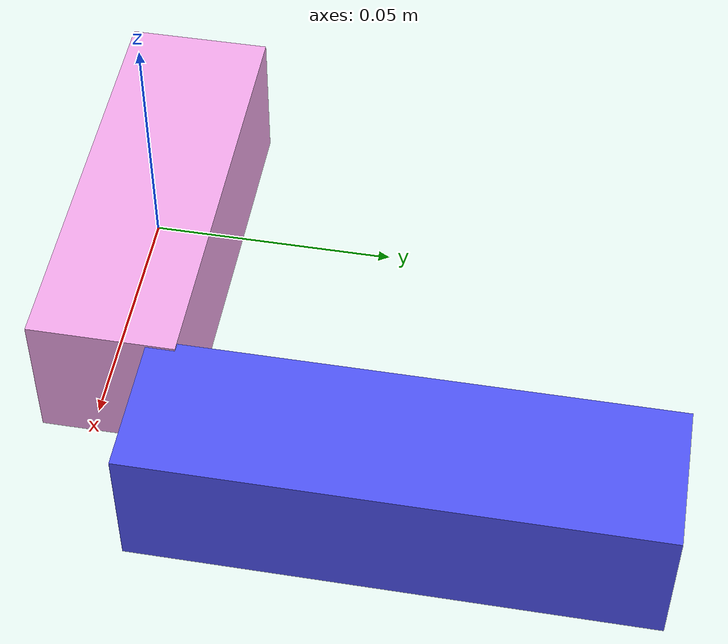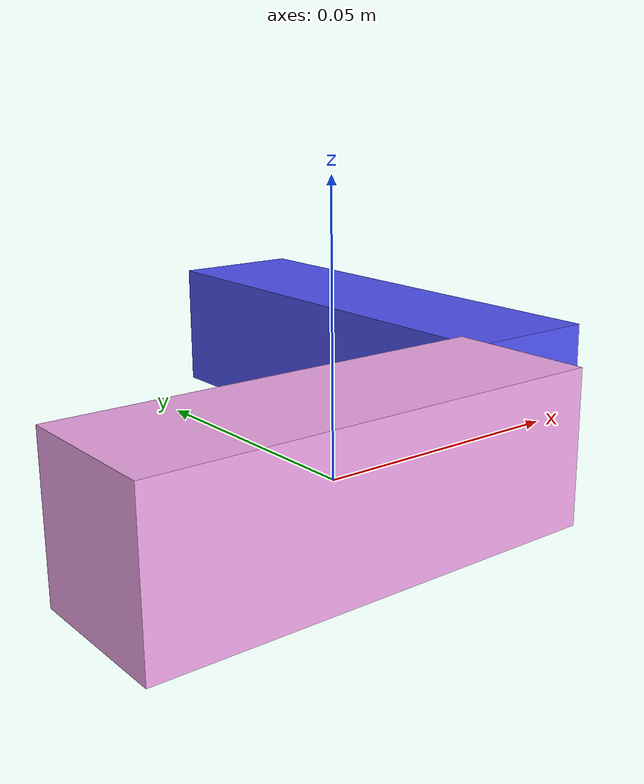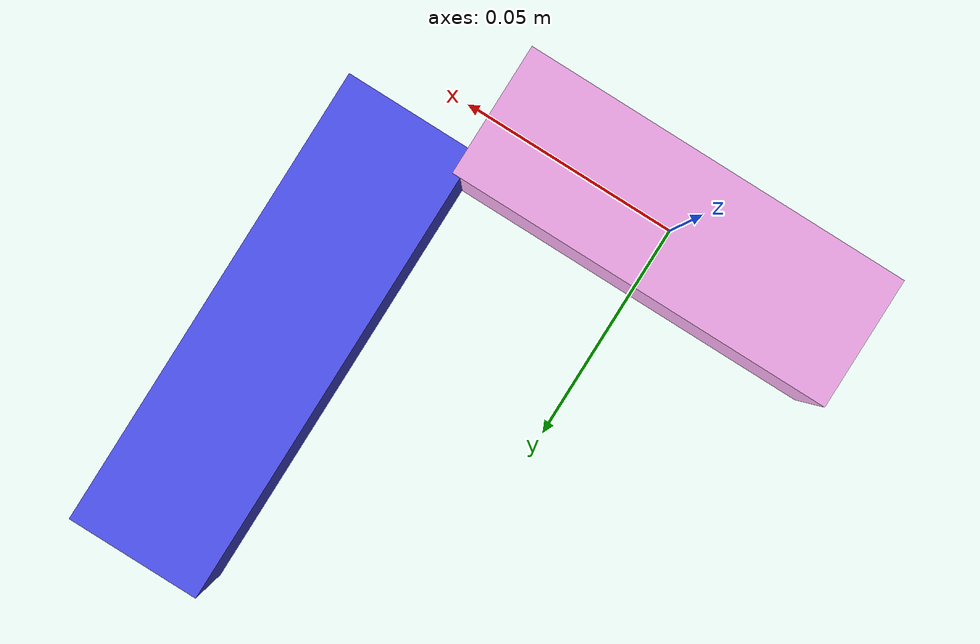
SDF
<sdf version="1.4"><world name="default"><model name="object0"><link name="link1"><pose>0 0 0 0 0 0</pose><inertial><pose>0 0 0 0 0 0</pose><mass>0.047590912091381</mass><inertia><ixx>7.138636813707149e-06</ixx><ixy>0</ixy><iyy>3.437304918349269e-05</iyy><ixz>0</ixz><iyz>0</iyz><izz>3.437304918349269e-05</izz></inertia></inertial><visual name="link1_visual"><pose>0 0  0 0 0 0</pose><geometry><box><size>0.08813131868774261 0.03 0.03</size></box></geometry><material><diffuse>0.9519430188396516 0.6636280308964009 0.9221278264684145 1</diffuse></material></visual><collision><pose>0 0  0 0 0 0</pose><geometry><box><size>0.08813131868774261 0.03 0.03</size></box></geometry></collision></link><link name="link2"><pose>0.057239893542120814 0.06181945398114549 0 0 0 0</pose><inertial><pose>0 0 0 0 0 0</pose><mass>0.05698731381158743</mass><inertia><ixx>5.688291419041702e-05</ixx><ixy>0</ixy><iyy>8.26790944549781e-06</iyy><ixz>0</ixz><iyz>0</iyz><izz>5.716310181665733e-05</izz></inertia></inertial><visual name="link2_visual"><pose>0 0  0 0 0 0</pose><geometry><box><size>0.03 0.10553206261405079 0.028999999999999998</size></box></geometry><material><diffuse>0.3142173819630291 0.33306684599864445 0.9712881409057919 1</diffuse></material></visual><collision><pose>0 0  0 0 0 0</pose><geometry><box><size>0.03 0.10553206261405079 0.028999999999999998</size></box></geometry></collision></link><joint name="link_joint_0" type="fixed"><parent>link1</parent><child>link2</child><pose>0 0 0 0 0 0</pose><axis><xyz>0 0 1</xyz></axis></joint></model></world></sdf>
